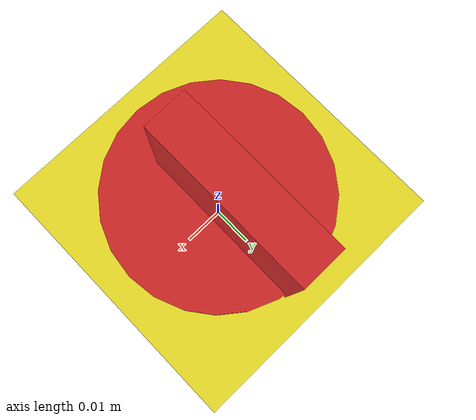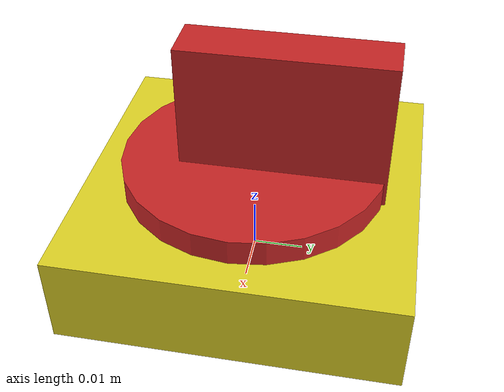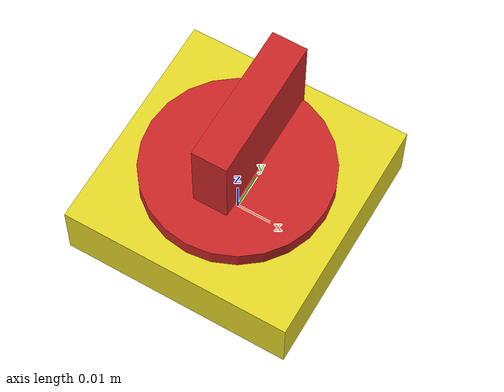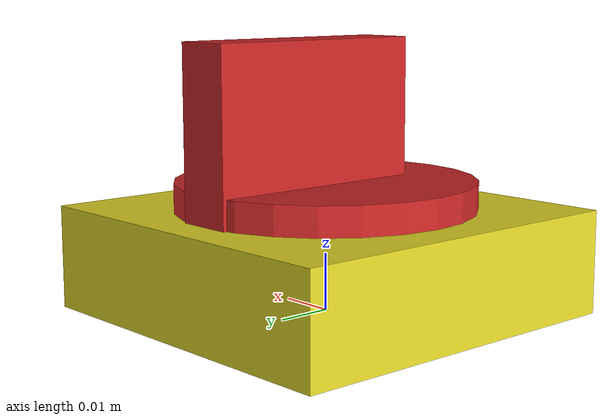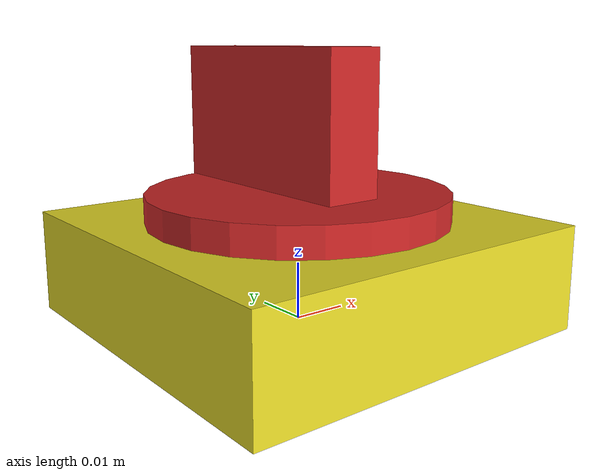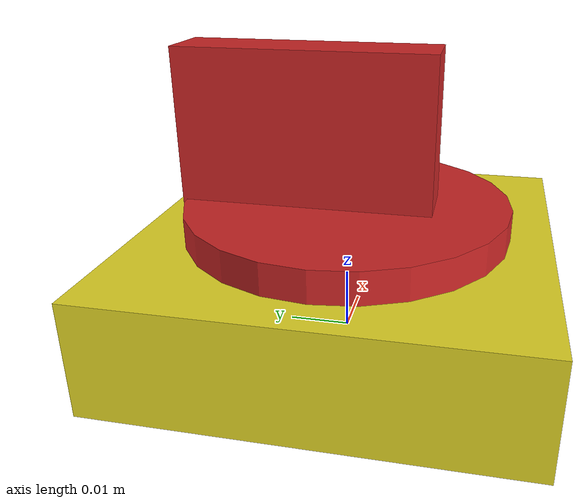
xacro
<?xml version="1.0"?>
<!-- Actuated Isolator Switch -->
<robot name="isolator_switch" xmlns:xacro="http://www.ros.org/wiki/xacro">

    <xacro:macro name="isolator_switch">

        <!-- Constants for Switch Dimensions -->
        <!-- Base -->
        <xacro:property name="width1" value="0.065"/>
        <xacro:property name="height1" value="0.018"/>
        <xacro:property name="mass1" value="0.1"/>

        <!-- Head -->
        <xacro:property name="length2" value="0.005"/>
        <xacro:property name="radius2" value="0.026"/>
        <xacro:property name="mass2" value="0.04"/>

        <!-- Grip -->
        <xacro:property name="length3" value="0.01"/>
        <xacro:property name="width3" value="0.04"/>
        <xacro:property name="height3" value="0.03"/>
        <xacro:property name="mass3" value="0.05"/>

        <!-- Import all Gazebo-customization elements, including Gazebo colors -->
        <xacro:include filename="$(find manipulation_playground_articulated_devices)/devices/isolator_switch/model/switch.gazebo" />
        <!-- Import Rviz colors -->
        <xacro:include filename="$(find manipulation_playground_articulated_devices)/devices/isolator_switch/model/materials.xacro" />

        <!-- Used to fix device to world -->
        <link name="world"/>

        <joint name="switch_base_to_world" type="fixed">
            <parent link="world"/>
            <child link="base"/>
            <origin xyz="0 0 0" rpy="0 0 0"/>
        </joint>

        <!-- Switch Base -->
        <link name="base">
            <collision>
                <origin xyz="0 0 ${height1/2}" rpy="0 0 0"/>
                <geometry>
                    <box size="${width1} ${width1} ${height1}"/>
                </geometry>
            </collision>

            <visual>
                <origin xyz="0 0 ${height1/2}" rpy="0 0 0"/>
                <geometry>
                    <box size="${width1} ${width1} ${height1}"/>
                </geometry>
                <material name="yellow"/>
            </visual>

            <inertial>
                <origin xyz="0 0 ${height1/2}" rpy="0 0 0"/>
                <mass value="${mass1}"/>
                <inertia
                    ixx="${mass1 / 12.0 * (width1*width1 + height1*height1)}" ixy="0.0" ixz="0.0"
                    iyy="${mass1 / 12.0 * (height1*height1 + width1*width1)}" iyz="0.0"
                    izz="${mass1 / 12.0 * (width1*width1 + width1*width1)}"/>
            </inertial>
        </link>

        <joint name="switch_handle_to_base" type="fixed">
            <parent link="base"/>
            <child link="handle_zero"/>
            <origin xyz="0 0 ${height1}" rpy="0 0 0"/>
        </joint>

        <link name="handle_zero">
            <inertial>
                <origin xyz="0 0 0" rpy="0 0 0" />
                <mass value="1" />
                <inertia
                ixx="1.0" ixy="0.0" ixz="0.0"
                iyy="1.0" iyz="0.0"
                izz="1.0" />
            </inertial>
        </link>

        <!-- Switch Joint -->
        <joint name="switch_joint" type="revolute">
            <parent link="handle_zero"/>
            <child link="handle"/>
            <origin xyz="0 0 0" rpy="0 0 0"/>
            <axis xyz="0 0 1"/>
            <dynamics damping="0.0" friction="0.0" />
            <limit effort="100" lower="0.0" upper="1.5707" velocity="0.5" />
        </joint>

        <transmission name="switch_trans">
            <type>transmission_interface/SimpleTransmission</type>
            <joint name="switch_joint">
                <hardwareInterface>hardware_interface/EffortJointInterface</hardwareInterface>
            </joint>
            <actuator name="switch_actuator">
                <hardwareInterface>hardware_interface/EffortJointInterface</hardwareInterface>
                <mechanicalReduction>1</mechanicalReduction>
            </actuator>
        </transmission>

        <!-- Switch Head -->
        <link name="handle">
            <collision>
                <origin xyz="0 0 ${length2/2}" rpy="0 0 0"/>
                <geometry>
                    <cylinder radius="${radius2}" length="${length2}"/>
                </geometry>
            </collision>

            <visual>
                <origin xyz="0 0 ${length2/2}" rpy="0 0 0"/>
                <geometry>
                    <cylinder radius="${radius2}" length="${length2}"/>
                </geometry>
                <material name="red"/>
            </visual>

            <inertial>
                <origin xyz="0 0 ${length2/2}" rpy="0 0 0"/>
                <mass value="${mass2}"/>
                <inertia
                    ixx="${mass2 / 12.0 * (3.0*radius2*radius2 + length2*length2)}" ixy="0.0" ixz="0.0"
                    iyy="${mass2 / 12.0 * (3.0*radius2*radius2 + length2*length2)}" iyz="0.0"
                    izz="${mass2 / 2.0 * (radius2*radius2)}"/>
            </inertial>
        </link>

        <joint name="switch_head_to_grip" type="fixed">
            <parent link="handle"/>
            <child link="grip"/>
            <origin xyz="0 ${radius2-width3/2} ${length2}" rpy="0 0 0"/>
        </joint>

        <!-- Switch Grip -->
        <link name="grip">
            <collision>
                <origin xyz="0 0 ${height3/2}" rpy="0 0 0"/>
                <geometry>
                    <box size="${length3} ${width3} ${height3}"/>
                </geometry>
            </collision>

            <visual>
                <origin xyz="0 0 ${height1/2}" rpy="0 0 0"/>
                <geometry>
                    <box size="${length3} ${width3} ${height3}"/>
                </geometry>
                <material name="red"/>
            </visual>

            <inertial>
                <origin xyz="0 0 ${height1/2}" rpy="0 0 0"/>
                <mass value="${mass1}"/>
                <inertia
                    ixx="${mass1 / 12.0 * (width3*width3 + height3*height3)}" ixy="0.0" ixz="0.0"
                    iyy="${mass1 / 12.0 * (height3*height3 + length3*length3)}" iyz="0.0"
                    izz="${mass1 / 12.0 * (length3*length3 + width3*width3)}"/>
            </inertial>
        </link>
    </xacro:macro>

    <xacro:isolator_switch/>
</robot>
